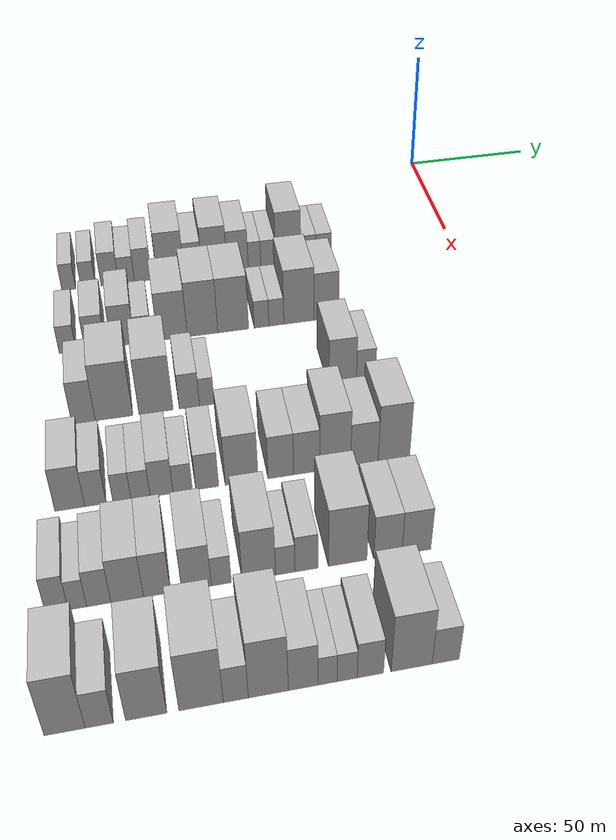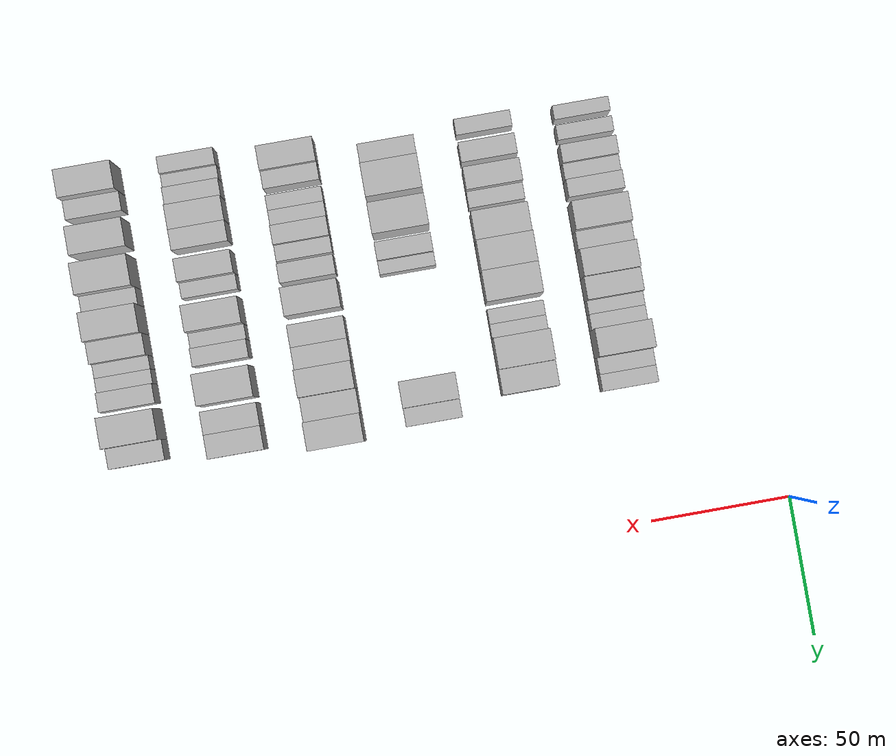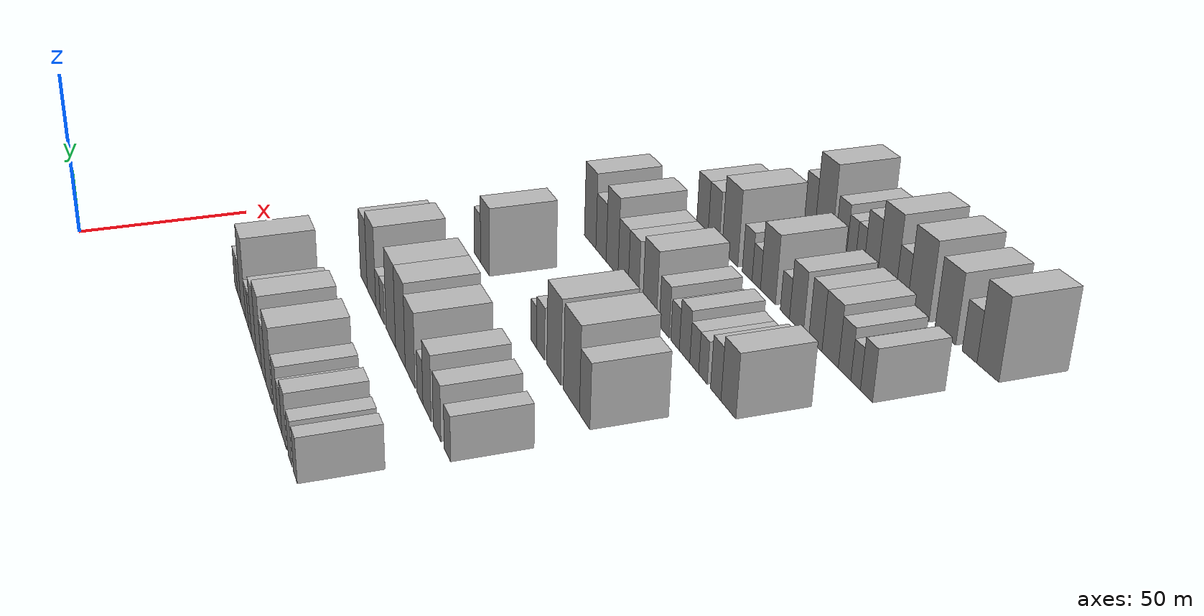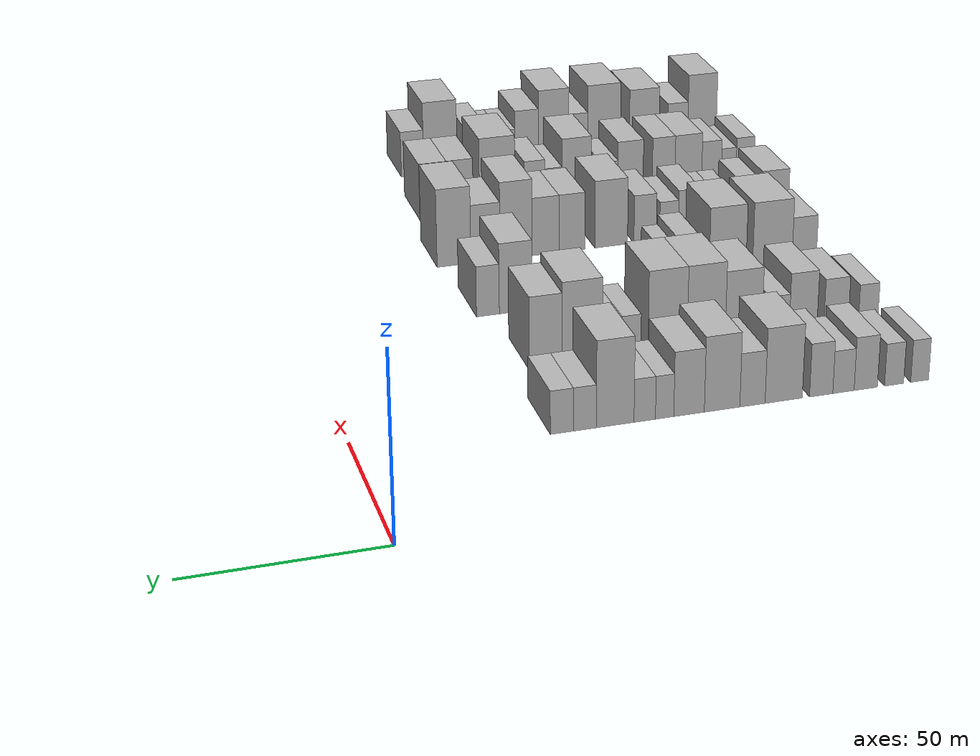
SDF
<sdf version="1.6">
 <world name="default">
  <model name="building_44">
   <static>1</static>
   <pose>50.0000 -148.0670 0 0.000000 0.000000 0.000000</pose>
   <link name="link">
    <pose>0 0 6.00 0 0 0</pose>
    <collision name="collision"><geometry><box><size>20.0000 5.0203 12.0000</size></box></geometry></collision>
    <visual name="visual">
     <cast_shadows>0</cast_shadows>
     <geometry><box><size>20.0000 5.0203 12.0000</size></box></geometry>
     <material>
      <script>
       <uri>model://HANNAS_wall/materials/scripts</uri>
       <uri>model://HANNAS_wall/materials/textures</uri>
       <name>vrc/HANNAS_wall</name>
      </script>
     </material>
    </visual>
   </link>
  </model>
  <model name="building_45">
   <static>1</static>
   <pose>50.0000 -140.8810 0 0.000000 0.000000 0.000000</pose>
   <link name="link">
    <pose>0 0 6.00 0 0 0</pose>
    <collision name="collision"><geometry><box><size>20.0000 5.3517 12.0000</size></box></geometry></collision>
    <visual name="visual">
     <cast_shadows>0</cast_shadows>
     <geometry><box><size>20.0000 5.3517 12.0000</size></box></geometry>
     <material>
      <script>
       <uri>model://HANNAS_wall/materials/scripts</uri>
       <uri>model://HANNAS_wall/materials/textures</uri>
       <name>vrc/HANNAS_wall</name>
      </script>
     </material>
    </visual>
   </link>
  </model>
  <model name="building_46">
   <static>1</static>
   <pose>50.0000 -132.9620 0 0.000000 0.000000 0.000000</pose>
   <link name="link">
    <pose>0 0 7.50 0 0 0</pose>
    <collision name="collision"><geometry><box><size>20.0000 6.4863 15.0000</size></box></geometry></collision>
    <visual name="visual">
     <cast_shadows>0</cast_shadows>
     <geometry><box><size>20.0000 6.4863 15.0000</size></box></geometry>
     <material>
      <script>
       <uri>model://HANNAS_wall/materials/scripts</uri>
       <uri>model://HANNAS_wall/materials/textures</uri>
       <name>vrc/HANNAS_wall</name>
      </script>
     </material>
    </visual>
   </link>
  </model>
  <model name="building_47">
   <static>1</static>
   <pose>50.0000 -126.7714 0 0.000000 0.000000 0.000000</pose>
   <link name="link">
    <pose>0 0 6.00 0 0 0</pose>
    <collision name="collision"><geometry><box><size>20.0000 5.8948 12.0000</size></box></geometry></collision>
    <visual name="visual">
     <cast_shadows>0</cast_shadows>
     <geometry><box><size>20.0000 5.8948 12.0000</size></box></geometry>
     <material>
      <script>
       <uri>model://HANNAS_wall/materials/scripts</uri>
       <uri>model://HANNAS_wall/materials/textures</uri>
       <name>vrc/HANNAS_wall</name>
      </script>
     </material>
    </visual>
   </link>
  </model>
  <model name="building_48">
   <static>1</static>
   <pose>50.0000 -120.6261 0 0.000000 0.000000 0.000000</pose>
   <link name="link">
    <pose>0 0 7.50 0 0 0</pose>
    <collision name="collision"><geometry><box><size>20.0000 6.3958 15.0000</size></box></geometry></collision>
    <visual name="visual">
     <cast_shadows>0</cast_shadows>
     <geometry><box><size>20.0000 6.3958 15.0000</size></box></geometry>
     <material>
      <script>
       <uri>model://HANNAS_wall/materials/scripts</uri>
       <uri>model://HANNAS_wall/materials/textures</uri>
       <name>vrc/HANNAS_wall</name>
      </script>
     </material>
    </visual>
   </link>
  </model>
  <model name="building_49">
   <static>1</static>
   <pose>50.0000 -110.3541 0 0.000000 0.000000 0.000000</pose>
   <link name="link">
    <pose>0 0 10.50 0 0 0</pose>
    <collision name="collision"><geometry><box><size>20.0000 10.1481 21.0000</size></box></geometry></collision>
    <visual name="visual">
     <cast_shadows>0</cast_shadows>
     <geometry><box><size>20.0000 10.1481 21.0000</size></box></geometry>
     <material>
      <script>
       <uri>model://HANNAS_wall/materials/scripts</uri>
       <uri>model://HANNAS_wall/materials/textures</uri>
       <name>vrc/HANNAS_wall</name>
      </script>
     </material>
    </visual>
   </link>
  </model>
  <model name="building_50">
   <static>1</static>
   <pose>50.0000 -101.8672 0 0.000000 0.000000 0.000000</pose>
   <link name="link">
    <pose>0 0 7.50 0 0 0</pose>
    <collision name="collision"><geometry><box><size>20.0000 6.8258 15.0000</size></box></geometry></collision>
    <visual name="visual">
     <cast_shadows>0</cast_shadows>
     <geometry><box><size>20.0000 6.8258 15.0000</size></box></geometry>
     <material>
      <script>
       <uri>model://HANNAS_wall/materials/scripts</uri>
       <uri>model://HANNAS_wall/materials/textures</uri>
       <name>vrc/HANNAS_wall</name>
      </script>
     </material>
    </visual>
   </link>
  </model>
  <model name="building_51">
   <static>1</static>
   <pose>50.0000 -93.6830 0 0.000000 0.000000 0.000000</pose>
   <link name="link">
    <pose>0 0 10.50 0 0 0</pose>
    <collision name="collision"><geometry><box><size>20.0000 9.5425 21.0000</size></box></geometry></collision>
    <visual name="visual">
     <cast_shadows>0</cast_shadows>
     <geometry><box><size>20.0000 9.5425 21.0000</size></box></geometry>
     <material>
      <script>
       <uri>model://HANNAS_wall/materials/scripts</uri>
       <uri>model://HANNAS_wall/materials/textures</uri>
       <name>vrc/HANNAS_wall</name>
      </script>
     </material>
    </visual>
   </link>
  </model>
  <model name="building_52">
   <static>1</static>
   <pose>50.0000 -84.8437 0 0.000000 0.000000 0.000000</pose>
   <link name="link">
    <pose>0 0 9.00 0 0 0</pose>
    <collision name="collision"><geometry><box><size>20.0000 8.1363 18.0000</size></box></geometry></collision>
    <visual name="visual">
     <cast_shadows>0</cast_shadows>
     <geometry><box><size>20.0000 8.1363 18.0000</size></box></geometry>
     <material>
      <script>
       <uri>model://HANNAS_wall/materials/scripts</uri>
       <uri>model://HANNAS_wall/materials/textures</uri>
       <name>vrc/HANNAS_wall</name>
      </script>
     </material>
    </visual>
   </link>
  </model>
  <model name="building_53">
   <static>1</static>
   <pose>50.0000 -78.3528 0 0.000000 0.000000 0.000000</pose>
   <link name="link">
    <pose>0 0 6.00 0 0 0</pose>
    <collision name="collision"><geometry><box><size>20.0000 4.8455 12.0000</size></box></geometry></collision>
    <visual name="visual">
     <cast_shadows>0</cast_shadows>
     <geometry><box><size>20.0000 4.8455 12.0000</size></box></geometry>
     <material>
      <script>
       <uri>model://HANNAS_wall/materials/scripts</uri>
       <uri>model://HANNAS_wall/materials/textures</uri>
       <name>vrc/HANNAS_wall</name>
      </script>
     </material>
    </visual>
   </link>
  </model>
  <model name="building_54">
   <static>1</static>
   <pose>50.0000 -73.1042 0 0.000000 0.000000 0.000000</pose>
   <link name="link">
    <pose>0 0 6.00 0 0 0</pose>
    <collision name="collision"><geometry><box><size>20.0000 5.6515 12.0000</size></box></geometry></collision>
    <visual name="visual">
     <cast_shadows>0</cast_shadows>
     <geometry><box><size>20.0000 5.6515 12.0000</size></box></geometry>
     <material>
      <script>
       <uri>model://HANNAS_wall/materials/scripts</uri>
       <uri>model://HANNAS_wall/materials/textures</uri>
       <name>vrc/HANNAS_wall</name>
      </script>
     </material>
    </visual>
   </link>
  </model>
  <model name="building_55">
   <static>1</static>
   <pose>50.0000 -65.3525 0 0.000000 0.000000 0.000000</pose>
   <link name="link">
    <pose>0 0 12.00 0 0 0</pose>
    <collision name="collision"><geometry><box><size>20.0000 9.8520 24.0000</size></box></geometry></collision>
    <visual name="visual">
     <cast_shadows>0</cast_shadows>
     <geometry><box><size>20.0000 9.8520 24.0000</size></box></geometry>
     <material>
      <script>
       <uri>model://HANNAS_wall/materials/scripts</uri>
       <uri>model://HANNAS_wall/materials/textures</uri>
       <name>vrc/HANNAS_wall</name>
      </script>
     </material>
    </visual>
   </link>
  </model>
  <model name="building_56">
   <static>1</static>
   <pose>50.0000 -57.4614 0 0.000000 0.000000 0.000000</pose>
   <link name="link">
    <pose>0 0 6.00 0 0 0</pose>
    <collision name="collision"><geometry><box><size>20.0000 5.9302 12.0000</size></box></geometry></collision>
    <visual name="visual">
     <cast_shadows>0</cast_shadows>
     <geometry><box><size>20.0000 5.9302 12.0000</size></box></geometry>
     <material>
      <script>
       <uri>model://HANNAS_wall/materials/scripts</uri>
       <uri>model://HANNAS_wall/materials/textures</uri>
       <name>vrc/HANNAS_wall</name>
      </script>
     </material>
    </visual>
   </link>
  </model>
  <model name="building_57">
   <static>1</static>
   <pose>50.0000 -51.5006 0 0.000000 0.000000 0.000000</pose>
   <link name="link">
    <pose>0 0 6.00 0 0 0</pose>
    <collision name="collision"><geometry><box><size>20.0000 5.9915 12.0000</size></box></geometry></collision>
    <visual name="visual">
     <cast_shadows>0</cast_shadows>
     <geometry><box><size>20.0000 5.9915 12.0000</size></box></geometry>
     <material>
      <script>
       <uri>model://HANNAS_wall/materials/scripts</uri>
       <uri>model://HANNAS_wall/materials/textures</uri>
       <name>vrc/HANNAS_wall</name>
      </script>
     </material>
    </visual>
   </link>
  </model>
  <model name="building_178">
   <static>1</static>
   <pose>85.0000 -149.0105 0 0.000000 0.000000 0.000000</pose>
   <link name="link">
    <pose>0 0 6.00 0 0 0</pose>
    <collision name="collision"><geometry><box><size>20.0000 5.7371 12.0000</size></box></geometry></collision>
    <visual name="visual">
     <cast_shadows>0</cast_shadows>
     <geometry><box><size>20.0000 5.7371 12.0000</size></box></geometry>
     <material>
      <script>
       <uri>model://HANNAS_wall/materials/scripts</uri>
       <uri>model://HANNAS_wall/materials/textures</uri>
       <name>vrc/HANNAS_wall</name>
      </script>
     </material>
    </visual>
   </link>
  </model>
  <model name="building_179">
   <static>1</static>
   <pose>85.0000 -139.5717 0 0.000000 0.000000 0.000000</pose>
   <link name="link">
    <pose>0 0 7.50 0 0 0</pose>
    <collision name="collision"><geometry><box><size>20.0000 7.1404 15.0000</size></box></geometry></collision>
    <visual name="visual">
     <cast_shadows>0</cast_shadows>
     <geometry><box><size>20.0000 7.1404 15.0000</size></box></geometry>
     <material>
      <script>
       <uri>model://HANNAS_wall/materials/scripts</uri>
       <uri>model://HANNAS_wall/materials/textures</uri>
       <name>vrc/HANNAS_wall</name>
      </script>
     </material>
    </visual>
   </link>
  </model>
  <model name="building_180">
   <static>1</static>
   <pose>85.0000 -129.9722 0 0.000000 0.000000 0.000000</pose>
   <link name="link">
    <pose>0 0 9.00 0 0 0</pose>
    <collision name="collision"><geometry><box><size>20.0000 8.0587 18.0000</size></box></geometry></collision>
    <visual name="visual">
     <cast_shadows>0</cast_shadows>
     <geometry><box><size>20.0000 8.0587 18.0000</size></box></geometry>
     <material>
      <script>
       <uri>model://HANNAS_wall/materials/scripts</uri>
       <uri>model://HANNAS_wall/materials/textures</uri>
       <name>vrc/HANNAS_wall</name>
      </script>
     </material>
    </visual>
   </link>
  </model>
  <model name="building_181">
   <static>1</static>
   <pose>85.0000 -122.9817 0 0.000000 0.000000 0.000000</pose>
   <link name="link">
    <pose>0 0 6.00 0 0 0</pose>
    <collision name="collision"><geometry><box><size>20.0000 5.9224 12.0000</size></box></geometry></collision>
    <visual name="visual">
     <cast_shadows>0</cast_shadows>
     <geometry><box><size>20.0000 5.9224 12.0000</size></box></geometry>
     <material>
      <script>
       <uri>model://HANNAS_wall/materials/scripts</uri>
       <uri>model://HANNAS_wall/materials/textures</uri>
       <name>vrc/HANNAS_wall</name>
      </script>
     </material>
    </visual>
   </link>
  </model>
  <model name="building_182">
   <static>1</static>
   <pose>85.0000 -112.7972 0 0.000000 0.000000 0.000000</pose>
   <link name="link">
    <pose>0 0 10.50 0 0 0</pose>
    <collision name="collision"><geometry><box><size>20.0000 10.4465 21.0000</size></box></geometry></collision>
    <visual name="visual">
     <cast_shadows>0</cast_shadows>
     <geometry><box><size>20.0000 10.4465 21.0000</size></box></geometry>
     <material>
      <script>
       <uri>model://HANNAS_wall/materials/scripts</uri>
       <uri>model://HANNAS_wall/materials/textures</uri>
       <name>vrc/HANNAS_wall</name>
      </script>
     </material>
    </visual>
   </link>
  </model>
  <model name="building_183">
   <static>1</static>
   <pose>85.0000 -102.1896 0 0.000000 0.000000 0.000000</pose>
   <link name="link">
    <pose>0 0 12.00 0 0 0</pose>
    <collision name="collision"><geometry><box><size>20.0000 10.7687 24.0000</size></box></geometry></collision>
    <visual name="visual">
     <cast_shadows>0</cast_shadows>
     <geometry><box><size>20.0000 10.7687 24.0000</size></box></geometry>
     <material>
      <script>
       <uri>model://HANNAS_wall/materials/scripts</uri>
       <uri>model://HANNAS_wall/materials/textures</uri>
       <name>vrc/HANNAS_wall</name>
      </script>
     </material>
    </visual>
   </link>
  </model>
  <model name="building_184">
   <static>1</static>
   <pose>85.0000 -91.3195 0 0.000000 0.000000 0.000000</pose>
   <link name="link">
    <pose>0 0 12.00 0 0 0</pose>
    <collision name="collision"><geometry><box><size>20.0000 10.9715 24.0000</size></box></geometry></collision>
    <visual name="visual">
     <cast_shadows>0</cast_shadows>
     <geometry><box><size>20.0000 10.9715 24.0000</size></box></geometry>
     <material>
      <script>
       <uri>model://HANNAS_wall/materials/scripts</uri>
       <uri>model://HANNAS_wall/materials/textures</uri>
       <name>vrc/HANNAS_wall</name>
      </script>
     </material>
    </visual>
   </link>
  </model>
  <model name="building_185">
   <static>1</static>
   <pose>85.0000 -81.1855 0 0.000000 0.000000 0.000000</pose>
   <link name="link">
    <pose>0 0 6.00 0 0 0</pose>
    <collision name="collision"><geometry><box><size>20.0000 5.2963 12.0000</size></box></geometry></collision>
    <visual name="visual">
     <cast_shadows>0</cast_shadows>
     <geometry><box><size>20.0000 5.2963 12.0000</size></box></geometry>
     <material>
      <script>
       <uri>model://HANNAS_wall/materials/scripts</uri>
       <uri>model://HANNAS_wall/materials/textures</uri>
       <name>vrc/HANNAS_wall</name>
      </script>
     </material>
    </visual>
   </link>
  </model>
  <model name="building_186">
   <static>1</static>
   <pose>85.0000 -75.8383 0 0.000000 0.000000 0.000000</pose>
   <link name="link">
    <pose>0 0 6.00 0 0 0</pose>
    <collision name="collision"><geometry><box><size>20.0000 5.3981 12.0000</size></box></geometry></collision>
    <visual name="visual">
     <cast_shadows>0</cast_shadows>
     <geometry><box><size>20.0000 5.3981 12.0000</size></box></geometry>
     <material>
      <script>
       <uri>model://HANNAS_wall/materials/scripts</uri>
       <uri>model://HANNAS_wall/materials/textures</uri>
       <name>vrc/HANNAS_wall</name>
      </script>
     </material>
    </visual>
   </link>
  </model>
  <model name="building_187">
   <static>1</static>
   <pose>85.0000 -67.6307 0 0.000000 0.000000 0.000000</pose>
   <link name="link">
    <pose>0 0 12.00 0 0 0</pose>
    <collision name="collision"><geometry><box><size>20.0000 11.0171 24.0000</size></box></geometry></collision>
    <visual name="visual">
     <cast_shadows>0</cast_shadows>
     <geometry><box><size>20.0000 11.0171 24.0000</size></box></geometry>
     <material>
      <script>
       <uri>model://HANNAS_wall/materials/scripts</uri>
       <uri>model://HANNAS_wall/materials/textures</uri>
       <name>vrc/HANNAS_wall</name>
      </script>
     </material>
    </visual>
   </link>
  </model>
  <model name="building_188">
   <static>1</static>
   <pose>85.0000 -57.6493 0 0.000000 0.000000 0.000000</pose>
   <link name="link">
    <pose>0 0 10.50 0 0 0</pose>
    <collision name="collision"><geometry><box><size>20.0000 8.9457 21.0000</size></box></geometry></collision>
    <visual name="visual">
     <cast_shadows>0</cast_shadows>
     <geometry><box><size>20.0000 8.9457 21.0000</size></box></geometry>
     <material>
      <script>
       <uri>model://HANNAS_wall/materials/scripts</uri>
       <uri>model://HANNAS_wall/materials/textures</uri>
       <name>vrc/HANNAS_wall</name>
      </script>
     </material>
    </visual>
   </link>
  </model>
  <model name="building_310">
   <static>1</static>
   <pose>120.0000 -144.5234 0 0.000000 0.000000 0.000000</pose>
   <link name="link">
    <pose>0 0 9.00 0 0 0</pose>
    <collision name="collision"><geometry><box><size>20.0000 7.4501 18.0000</size></box></geometry></collision>
    <visual name="visual">
     <cast_shadows>0</cast_shadows>
     <geometry><box><size>20.0000 7.4501 18.0000</size></box></geometry>
     <material>
      <script>
       <uri>model://HANNAS_wall/materials/scripts</uri>
       <uri>model://HANNAS_wall/materials/textures</uri>
       <name>vrc/HANNAS_wall</name>
      </script>
     </material>
    </visual>
   </link>
  </model>
  <model name="building_311">
   <static>1</static>
   <pose>120.0000 -134.8177 0 0.000000 0.000000 0.000000</pose>
   <link name="link">
    <pose>0 0 12.00 0 0 0</pose>
    <collision name="collision"><geometry><box><size>20.0000 11.9612 24.0000</size></box></geometry></collision>
    <visual name="visual">
     <cast_shadows>0</cast_shadows>
     <geometry><box><size>20.0000 11.9612 24.0000</size></box></geometry>
     <material>
      <script>
       <uri>model://HANNAS_wall/materials/scripts</uri>
       <uri>model://HANNAS_wall/materials/textures</uri>
       <name>vrc/HANNAS_wall</name>
      </script>
     </material>
    </visual>
   </link>
  </model>
  <model name="building_312">
   <static>1</static>
   <pose>120.0000 -121.3184 0 0.000000 0.000000 0.000000</pose>
   <link name="link">
    <pose>0 0 12.00 0 0 0</pose>
    <collision name="collision"><geometry><box><size>20.0000 11.0375 24.0000</size></box></geometry></collision>
    <visual name="visual">
     <cast_shadows>0</cast_shadows>
     <geometry><box><size>20.0000 11.0375 24.0000</size></box></geometry>
     <material>
      <script>
       <uri>model://HANNAS_wall/materials/scripts</uri>
       <uri>model://HANNAS_wall/materials/textures</uri>
       <name>vrc/HANNAS_wall</name>
      </script>
     </material>
    </visual>
   </link>
  </model>
  <model name="building_313">
   <static>1</static>
   <pose>120.0000 -110.4935 0 0.000000 0.000000 0.000000</pose>
   <link name="link">
    <pose>0 0 7.50 0 0 0</pose>
    <collision name="collision"><geometry><box><size>20.0000 6.6123 15.0000</size></box></geometry></collision>
    <visual name="visual">
     <cast_shadows>0</cast_shadows>
     <geometry><box><size>20.0000 6.6123 15.0000</size></box></geometry>
     <material>
      <script>
       <uri>model://HANNAS_wall/materials/scripts</uri>
       <uri>model://HANNAS_wall/materials/textures</uri>
       <name>vrc/HANNAS_wall</name>
      </script>
     </material>
    </visual>
   </link>
  </model>
  <model name="building_314">
   <static>1</static>
   <pose>120.0000 -104.7783 0 0.000000 0.000000 0.000000</pose>
   <link name="link">
    <pose>0 0 6.00 0 0 0</pose>
    <collision name="collision"><geometry><box><size>20.0000 4.8182 12.0000</size></box></geometry></collision>
    <visual name="visual">
     <cast_shadows>0</cast_shadows>
     <geometry><box><size>20.0000 4.8182 12.0000</size></box></geometry>
     <material>
      <script>
       <uri>model://HANNAS_wall/materials/scripts</uri>
       <uri>model://HANNAS_wall/materials/textures</uri>
       <name>vrc/HANNAS_wall</name>
      </script>
     </material>
    </visual>
   </link>
  </model>
  <model name="building_315">
   <static>1</static>
   <pose>120.0000 -59.3512 0 0.000000 0.000000 0.000000</pose>
   <link name="link">
    <pose>0 0 10.50 0 0 0</pose>
    <collision name="collision"><geometry><box><size>20.0000 9.3453 21.0000</size></box></geometry></collision>
    <visual name="visual">
     <cast_shadows>0</cast_shadows>
     <geometry><box><size>20.0000 9.3453 21.0000</size></box></geometry>
     <material>
      <script>
       <uri>model://HANNAS_wall/materials/scripts</uri>
       <uri>model://HANNAS_wall/materials/textures</uri>
       <name>vrc/HANNAS_wall</name>
      </script>
     </material>
    </visual>
   </link>
  </model>
  <model name="building_316">
   <static>1</static>
   <pose>120.0000 -51.4318 0 0.000000 0.000000 0.000000</pose>
   <link name="link">
    <pose>0 0 7.50 0 0 0</pose>
    <collision name="collision"><geometry><box><size>20.0000 6.4934 15.0000</size></box></geometry></collision>
    <visual name="visual">
     <cast_shadows>0</cast_shadows>
     <geometry><box><size>20.0000 6.4934 15.0000</size></box></geometry>
     <material>
      <script>
       <uri>model://HANNAS_wall/materials/scripts</uri>
       <uri>model://HANNAS_wall/materials/textures</uri>
       <name>vrc/HANNAS_wall</name>
      </script>
     </material>
    </visual>
   </link>
  </model>
  <model name="building_432">
   <static>1</static>
   <pose>155.0000 -149.4678 0 0.000000 0.000000 0.000000</pose>
   <link name="link">
    <pose>0 0 9.00 0 0 0</pose>
    <collision name="collision"><geometry><box><size>20.0000 8.6415 18.0000</size></box></geometry></collision>
    <visual name="visual">
     <cast_shadows>0</cast_shadows>
     <geometry><box><size>20.0000 8.6415 18.0000</size></box></geometry>
     <material>
      <script>
       <uri>model://HANNAS_wall/materials/scripts</uri>
       <uri>model://HANNAS_wall/materials/textures</uri>
       <name>vrc/HANNAS_wall</name>
      </script>
     </material>
    </visual>
   </link>
  </model>
  <model name="building_433">
   <static>1</static>
   <pose>155.0000 -142.0054 0 0.000000 0.000000 0.000000</pose>
   <link name="link">
    <pose>0 0 7.50 0 0 0</pose>
    <collision name="collision"><geometry><box><size>20.0000 6.2834 15.0000</size></box></geometry></collision>
    <visual name="visual">
     <cast_shadows>0</cast_shadows>
     <geometry><box><size>20.0000 6.2834 15.0000</size></box></geometry>
     <material>
      <script>
       <uri>model://HANNAS_wall/materials/scripts</uri>
       <uri>model://HANNAS_wall/materials/textures</uri>
       <name>vrc/HANNAS_wall</name>
      </script>
     </material>
    </visual>
   </link>
  </model>
  <model name="building_434">
   <static>1</static>
   <pose>155.0000 -134.2069 0 0.000000 0.000000 0.000000</pose>
   <link name="link">
    <pose>0 0 6.00 0 0 0</pose>
    <collision name="collision"><geometry><box><size>20.0000 5.3136 12.0000</size></box></geometry></collision>
    <visual name="visual">
     <cast_shadows>0</cast_shadows>
     <geometry><box><size>20.0000 5.3136 12.0000</size></box></geometry>
     <material>
      <script>
       <uri>model://HANNAS_wall/materials/scripts</uri>
       <uri>model://HANNAS_wall/materials/textures</uri>
       <name>vrc/HANNAS_wall</name>
      </script>
     </material>
    </visual>
   </link>
  </model>
  <model name="building_435">
   <static>1</static>
   <pose>155.0000 -128.7208 0 0.000000 0.000000 0.000000</pose>
   <link name="link">
    <pose>0 0 6.00 0 0 0</pose>
    <collision name="collision"><geometry><box><size>20.0000 5.6585 12.0000</size></box></geometry></collision>
    <visual name="visual">
     <cast_shadows>0</cast_shadows>
     <geometry><box><size>20.0000 5.6585 12.0000</size></box></geometry>
     <material>
      <script>
       <uri>model://HANNAS_wall/materials/scripts</uri>
       <uri>model://HANNAS_wall/materials/textures</uri>
       <name>vrc/HANNAS_wall</name>
      </script>
     </material>
    </visual>
   </link>
  </model>
  <model name="building_436">
   <static>1</static>
   <pose>155.0000 -122.4604 0 0.000000 0.000000 0.000000</pose>
   <link name="link">
    <pose>0 0 7.50 0 0 0</pose>
    <collision name="collision"><geometry><box><size>20.0000 6.8624 15.0000</size></box></geometry></collision>
    <visual name="visual">
     <cast_shadows>0</cast_shadows>
     <geometry><box><size>20.0000 6.8624 15.0000</size></box></geometry>
     <material>
      <script>
       <uri>model://HANNAS_wall/materials/scripts</uri>
       <uri>model://HANNAS_wall/materials/textures</uri>
       <name>vrc/HANNAS_wall</name>
      </script>
     </material>
    </visual>
   </link>
  </model>
  <model name="building_437">
   <static>1</static>
   <pose>155.0000 -116.1235 0 0.000000 0.000000 0.000000</pose>
   <link name="link">
    <pose>0 0 6.00 0 0 0</pose>
    <collision name="collision"><geometry><box><size>20.0000 5.8115 12.0000</size></box></geometry></collision>
    <visual name="visual">
     <cast_shadows>0</cast_shadows>
     <geometry><box><size>20.0000 5.8115 12.0000</size></box></geometry>
     <material>
      <script>
       <uri>model://HANNAS_wall/materials/scripts</uri>
       <uri>model://HANNAS_wall/materials/textures</uri>
       <name>vrc/HANNAS_wall</name>
      </script>
     </material>
    </visual>
   </link>
  </model>
  <model name="building_438">
   <static>1</static>
   <pose>155.0000 -108.7493 0 0.000000 0.000000 0.000000</pose>
   <link name="link">
    <pose>0 0 7.50 0 0 0</pose>
    <collision name="collision"><geometry><box><size>20.0000 6.9369 15.0000</size></box></geometry></collision>
    <visual name="visual">
     <cast_shadows>0</cast_shadows>
     <geometry><box><size>20.0000 6.9369 15.0000</size></box></geometry>
     <material>
      <script>
       <uri>model://HANNAS_wall/materials/scripts</uri>
       <uri>model://HANNAS_wall/materials/textures</uri>
       <name>vrc/HANNAS_wall</name>
      </script>
     </material>
    </visual>
   </link>
  </model>
  <model name="building_439">
   <static>1</static>
   <pose>155.0000 -98.2603 0 0.000000 0.000000 0.000000</pose>
   <link name="link">
    <pose>0 0 10.50 0 0 0</pose>
    <collision name="collision"><geometry><box><size>20.0000 10.0411 21.0000</size></box></geometry></collision>
    <visual name="visual">
     <cast_shadows>0</cast_shadows>
     <geometry><box><size>20.0000 10.0411 21.0000</size></box></geometry>
     <material>
      <script>
       <uri>model://HANNAS_wall/materials/scripts</uri>
       <uri>model://HANNAS_wall/materials/textures</uri>
       <name>vrc/HANNAS_wall</name>
      </script>
     </material>
    </visual>
   </link>
  </model>
  <model name="building_440">
   <static>1</static>
   <pose>155.0000 -86.2630 0 0.000000 0.000000 0.000000</pose>
   <link name="link">
    <pose>0 0 9.00 0 0 0</pose>
    <collision name="collision"><geometry><box><size>20.0000 7.9534 18.0000</size></box></geometry></collision>
    <visual name="visual">
     <cast_shadows>0</cast_shadows>
     <geometry><box><size>20.0000 7.9534 18.0000</size></box></geometry>
     <material>
      <script>
       <uri>model://HANNAS_wall/materials/scripts</uri>
       <uri>model://HANNAS_wall/materials/textures</uri>
       <name>vrc/HANNAS_wall</name>
      </script>
     </material>
    </visual>
   </link>
  </model>
  <model name="building_441">
   <static>1</static>
   <pose>155.0000 -78.2356 0 0.000000 0.000000 0.000000</pose>
   <link name="link">
    <pose>0 0 9.00 0 0 0</pose>
    <collision name="collision"><geometry><box><size>20.0000 8.1012 18.0000</size></box></geometry></collision>
    <visual name="visual">
     <cast_shadows>0</cast_shadows>
     <geometry><box><size>20.0000 8.1012 18.0000</size></box></geometry>
     <material>
      <script>
       <uri>model://HANNAS_wall/materials/scripts</uri>
       <uri>model://HANNAS_wall/materials/textures</uri>
       <name>vrc/HANNAS_wall</name>
      </script>
     </material>
    </visual>
   </link>
  </model>
  <model name="building_442">
   <static>1</static>
   <pose>155.0000 -69.3473 0 0.000000 0.000000 0.000000</pose>
   <link name="link">
    <pose>0 0 12.00 0 0 0</pose>
    <collision name="collision"><geometry><box><size>20.0000 9.6756 24.0000</size></box></geometry></collision>
    <visual name="visual">
     <cast_shadows>0</cast_shadows>
     <geometry><box><size>20.0000 9.6756 24.0000</size></box></geometry>
     <material>
      <script>
       <uri>model://HANNAS_wall/materials/scripts</uri>
       <uri>model://HANNAS_wall/materials/textures</uri>
       <name>vrc/HANNAS_wall</name>
      </script>
     </material>
    </visual>
   </link>
  </model>
  <model name="building_443">
   <static>1</static>
   <pose>155.0000 -60.1637 0 0.000000 0.000000 0.000000</pose>
   <link name="link">
    <pose>0 0 9.00 0 0 0</pose>
    <collision name="collision"><geometry><box><size>20.0000 8.6916 18.0000</size></box></geometry></collision>
    <visual name="visual">
     <cast_shadows>0</cast_shadows>
     <geometry><box><size>20.0000 8.6916 18.0000</size></box></geometry>
     <material>
      <script>
       <uri>model://HANNAS_wall/materials/scripts</uri>
       <uri>model://HANNAS_wall/materials/textures</uri>
       <name>vrc/HANNAS_wall</name>
      </script>
     </material>
    </visual>
   </link>
  </model>
  <model name="building_444">
   <static>1</static>
   <pose>155.0000 -50.7985 0 0.000000 0.000000 0.000000</pose>
   <link name="link">
    <pose>0 0 12.00 0 0 0</pose>
    <collision name="collision"><geometry><box><size>20.0000 10.0389 24.0000</size></box></geometry></collision>
    <visual name="visual">
     <cast_shadows>0</cast_shadows>
     <geometry><box><size>20.0000 10.0389 24.0000</size></box></geometry>
     <material>
      <script>
       <uri>model://HANNAS_wall/materials/scripts</uri>
       <uri>model://HANNAS_wall/materials/textures</uri>
       <name>vrc/HANNAS_wall</name>
      </script>
     </material>
    </visual>
   </link>
  </model>
  <model name="building_563">
   <static>1</static>
   <pose>190.0000 -153.4759 0 0.000000 0.000000 0.000000</pose>
   <link name="link">
    <pose>0 0 7.50 0 0 0</pose>
    <collision name="collision"><geometry><box><size>20.0000 6.0039 15.0000</size></box></geometry></collision>
    <visual name="visual">
     <cast_shadows>0</cast_shadows>
     <geometry><box><size>20.0000 6.0039 15.0000</size></box></geometry>
     <material>
      <script>
       <uri>model://HANNAS_wall/materials/scripts</uri>
       <uri>model://HANNAS_wall/materials/textures</uri>
       <name>vrc/HANNAS_wall</name>
      </script>
     </material>
    </visual>
   </link>
  </model>
  <model name="building_564">
   <static>1</static>
   <pose>190.0000 -148.0241 0 0.000000 0.000000 0.000000</pose>
   <link name="link">
    <pose>0 0 6.00 0 0 0</pose>
    <collision name="collision"><geometry><box><size>20.0000 4.8997 12.0000</size></box></geometry></collision>
    <visual name="visual">
     <cast_shadows>0</cast_shadows>
     <geometry><box><size>20.0000 4.8997 12.0000</size></box></geometry>
     <material>
      <script>
       <uri>model://HANNAS_wall/materials/scripts</uri>
       <uri>model://HANNAS_wall/materials/textures</uri>
       <name>vrc/HANNAS_wall</name>
      </script>
     </material>
    </visual>
   </link>
  </model>
  <model name="building_565">
   <static>1</static>
   <pose>190.0000 -142.3286 0 0.000000 0.000000 0.000000</pose>
   <link name="link">
    <pose>0 0 7.50 0 0 0</pose>
    <collision name="collision"><geometry><box><size>20.0000 6.4913 15.0000</size></box></geometry></collision>
    <visual name="visual">
     <cast_shadows>0</cast_shadows>
     <geometry><box><size>20.0000 6.4913 15.0000</size></box></geometry>
     <material>
      <script>
       <uri>model://HANNAS_wall/materials/scripts</uri>
       <uri>model://HANNAS_wall/materials/textures</uri>
       <name>vrc/HANNAS_wall</name>
      </script>
     </material>
    </visual>
   </link>
  </model>
  <model name="building_566">
   <static>1</static>
   <pose>190.0000 -134.6798 0 0.000000 0.000000 0.000000</pose>
   <link name="link">
    <pose>0 0 9.00 0 0 0</pose>
    <collision name="collision"><geometry><box><size>20.0000 8.8063 18.0000</size></box></geometry></collision>
    <visual name="visual">
     <cast_shadows>0</cast_shadows>
     <geometry><box><size>20.0000 8.8063 18.0000</size></box></geometry>
     <material>
      <script>
       <uri>model://HANNAS_wall/materials/scripts</uri>
       <uri>model://HANNAS_wall/materials/textures</uri>
       <name>vrc/HANNAS_wall</name>
      </script>
     </material>
    </visual>
   </link>
  </model>
  <model name="building_567">
   <static>1</static>
   <pose>190.0000 -126.5746 0 0.000000 0.000000 0.000000</pose>
   <link name="link">
    <pose>0 0 9.00 0 0 0</pose>
    <collision name="collision"><geometry><box><size>20.0000 7.4042 18.0000</size></box></geometry></collision>
    <visual name="visual">
     <cast_shadows>0</cast_shadows>
     <geometry><box><size>20.0000 7.4042 18.0000</size></box></geometry>
     <material>
      <script>
       <uri>model://HANNAS_wall/materials/scripts</uri>
       <uri>model://HANNAS_wall/materials/textures</uri>
       <name>vrc/HANNAS_wall</name>
      </script>
     </material>
    </visual>
   </link>
  </model>
  <model name="building_568">
   <static>1</static>
   <pose>190.0000 -115.7931 0 0.000000 0.000000 0.000000</pose>
   <link name="link">
    <pose>0 0 9.00 0 0 0</pose>
    <collision name="collision"><geometry><box><size>20.0000 8.1587 18.0000</size></box></geometry></collision>
    <visual name="visual">
     <cast_shadows>0</cast_shadows>
     <geometry><box><size>20.0000 8.1587 18.0000</size></box></geometry>
     <material>
      <script>
       <uri>model://HANNAS_wall/materials/scripts</uri>
       <uri>model://HANNAS_wall/materials/textures</uri>
       <name>vrc/HANNAS_wall</name>
      </script>
     </material>
    </visual>
   </link>
  </model>
  <model name="building_569">
   <static>1</static>
   <pose>190.0000 -108.9395 0 0.000000 0.000000 0.000000</pose>
   <link name="link">
    <pose>0 0 6.00 0 0 0</pose>
    <collision name="collision"><geometry><box><size>20.0000 5.5485 12.0000</size></box></geometry></collision>
    <visual name="visual">
     <cast_shadows>0</cast_shadows>
     <geometry><box><size>20.0000 5.5485 12.0000</size></box></geometry>
     <material>
      <script>
       <uri>model://HANNAS_wall/materials/scripts</uri>
       <uri>model://HANNAS_wall/materials/textures</uri>
       <name>vrc/HANNAS_wall</name>
      </script>
     </material>
    </visual>
   </link>
  </model>
  <model name="building_570">
   <static>1</static>
   <pose>190.0000 -98.4611 0 0.000000 0.000000 0.000000</pose>
   <link name="link">
    <pose>0 0 10.50 0 0 0</pose>
    <collision name="collision"><geometry><box><size>20.0000 9.4082 21.0000</size></box></geometry></collision>
    <visual name="visual">
     <cast_shadows>0</cast_shadows>
     <geometry><box><size>20.0000 9.4082 21.0000</size></box></geometry>
     <material>
      <script>
       <uri>model://HANNAS_wall/materials/scripts</uri>
       <uri>model://HANNAS_wall/materials/textures</uri>
       <name>vrc/HANNAS_wall</name>
      </script>
     </material>
    </visual>
   </link>
  </model>
  <model name="building_571">
   <static>1</static>
   <pose>190.0000 -91.0207 0 0.000000 0.000000 0.000000</pose>
   <link name="link">
    <pose>0 0 6.00 0 0 0</pose>
    <collision name="collision"><geometry><box><size>20.0000 5.4726 12.0000</size></box></geometry></collision>
    <visual name="visual">
     <cast_shadows>0</cast_shadows>
     <geometry><box><size>20.0000 5.4726 12.0000</size></box></geometry>
     <material>
      <script>
       <uri>model://HANNAS_wall/materials/scripts</uri>
       <uri>model://HANNAS_wall/materials/textures</uri>
       <name>vrc/HANNAS_wall</name>
      </script>
     </material>
    </visual>
   </link>
  </model>
  <model name="building_572">
   <static>1</static>
   <pose>190.0000 -85.0434 0 0.000000 0.000000 0.000000</pose>
   <link name="link">
    <pose>0 0 7.50 0 0 0</pose>
    <collision name="collision"><geometry><box><size>20.0000 6.4820 15.0000</size></box></geometry></collision>
    <visual name="visual">
     <cast_shadows>0</cast_shadows>
     <geometry><box><size>20.0000 6.4820 15.0000</size></box></geometry>
     <material>
      <script>
       <uri>model://HANNAS_wall/materials/scripts</uri>
       <uri>model://HANNAS_wall/materials/textures</uri>
       <name>vrc/HANNAS_wall</name>
      </script>
     </material>
    </visual>
   </link>
  </model>
  <model name="building_573">
   <static>1</static>
   <pose>190.0000 -73.2659 0 0.000000 0.000000 0.000000</pose>
   <link name="link">
    <pose>0 0 12.00 0 0 0</pose>
    <collision name="collision"><geometry><box><size>20.0000 11.0730 24.0000</size></box></geometry></collision>
    <visual name="visual">
     <cast_shadows>0</cast_shadows>
     <geometry><box><size>20.0000 11.0730 24.0000</size></box></geometry>
     <material>
      <script>
       <uri>model://HANNAS_wall/materials/scripts</uri>
       <uri>model://HANNAS_wall/materials/textures</uri>
       <name>vrc/HANNAS_wall</name>
      </script>
     </material>
    </visual>
   </link>
  </model>
  <model name="building_574">
   <static>1</static>
   <pose>190.0000 -61.6430 0 0.000000 0.000000 0.000000</pose>
   <link name="link">
    <pose>0 0 9.00 0 0 0</pose>
    <collision name="collision"><geometry><box><size>20.0000 8.1729 18.0000</size></box></geometry></collision>
    <visual name="visual">
     <cast_shadows>0</cast_shadows>
     <geometry><box><size>20.0000 8.1729 18.0000</size></box></geometry>
     <material>
      <script>
       <uri>model://HANNAS_wall/materials/scripts</uri>
       <uri>model://HANNAS_wall/materials/textures</uri>
       <name>vrc/HANNAS_wall</name>
      </script>
     </material>
    </visual>
   </link>
  </model>
  <model name="building_575">
   <static>1</static>
   <pose>190.0000 -53.3110 0 0.000000 0.000000 0.000000</pose>
   <link name="link">
    <pose>0 0 9.00 0 0 0</pose>
    <collision name="collision"><geometry><box><size>20.0000 8.4911 18.0000</size></box></geometry></collision>
    <visual name="visual">
     <cast_shadows>0</cast_shadows>
     <geometry><box><size>20.0000 8.4911 18.0000</size></box></geometry>
     <material>
      <script>
       <uri>model://HANNAS_wall/materials/scripts</uri>
       <uri>model://HANNAS_wall/materials/textures</uri>
       <name>vrc/HANNAS_wall</name>
      </script>
     </material>
    </visual>
   </link>
  </model>
  <model name="building_687">
   <static>1</static>
   <pose>225.0000 -151.9235 0 0.000000 0.000000 0.000000</pose>
   <link name="link">
    <pose>0 0 12.00 0 0 0</pose>
    <collision name="collision"><geometry><box><size>20.0000 9.8597 24.0000</size></box></geometry></collision>
    <visual name="visual">
     <cast_shadows>0</cast_shadows>
     <geometry><box><size>20.0000 9.8597 24.0000</size></box></geometry>
     <material>
      <script>
       <uri>model://HANNAS_wall/materials/scripts</uri>
       <uri>model://HANNAS_wall/materials/textures</uri>
       <name>vrc/HANNAS_wall</name>
      </script>
     </material>
    </visual>
   </link>
  </model>
  <model name="building_688">
   <static>1</static>
   <pose>225.0000 -143.5648 0 0.000000 0.000000 0.000000</pose>
   <link name="link">
    <pose>0 0 7.50 0 0 0</pose>
    <collision name="collision"><geometry><box><size>20.0000 6.8578 15.0000</size></box></geometry></collision>
    <visual name="visual">
     <cast_shadows>0</cast_shadows>
     <geometry><box><size>20.0000 6.8578 15.0000</size></box></geometry>
     <material>
      <script>
       <uri>model://HANNAS_wall/materials/scripts</uri>
       <uri>model://HANNAS_wall/materials/textures</uri>
       <name>vrc/HANNAS_wall</name>
      </script>
     </material>
    </visual>
   </link>
  </model>
  <model name="building_689">
   <static>1</static>
   <pose>225.0000 -132.0705 0 0.000000 0.000000 0.000000</pose>
   <link name="link">
    <pose>0 0 10.50 0 0 0</pose>
    <collision name="collision"><geometry><box><size>20.0000 10.1306 21.0000</size></box></geometry></collision>
    <visual name="visual">
     <cast_shadows>0</cast_shadows>
     <geometry><box><size>20.0000 10.1306 21.0000</size></box></geometry>
     <material>
      <script>
       <uri>model://HANNAS_wall/materials/scripts</uri>
       <uri>model://HANNAS_wall/materials/textures</uri>
       <name>vrc/HANNAS_wall</name>
      </script>
     </material>
    </visual>
   </link>
  </model>
  <model name="building_690">
   <static>1</static>
   <pose>225.0000 -118.4571 0 0.000000 0.000000 0.000000</pose>
   <link name="link">
    <pose>0 0 12.00 0 0 0</pose>
    <collision name="collision"><geometry><box><size>20.0000 11.0963 24.0000</size></box></geometry></collision>
    <visual name="visual">
     <cast_shadows>0</cast_shadows>
     <geometry><box><size>20.0000 11.0963 24.0000</size></box></geometry>
     <material>
      <script>
       <uri>model://HANNAS_wall/materials/scripts</uri>
       <uri>model://HANNAS_wall/materials/textures</uri>
       <name>vrc/HANNAS_wall</name>
      </script>
     </material>
    </visual>
   </link>
  </model>
  <model name="building_691">
   <static>1</static>
   <pose>225.0000 -109.7443 0 0.000000 0.000000 0.000000</pose>
   <link name="link">
    <pose>0 0 7.50 0 0 0</pose>
    <collision name="collision"><geometry><box><size>20.0000 6.3293 15.0000</size></box></geometry></collision>
    <visual name="visual">
     <cast_shadows>0</cast_shadows>
     <geometry><box><size>20.0000 6.3293 15.0000</size></box></geometry>
     <material>
      <script>
       <uri>model://HANNAS_wall/materials/scripts</uri>
       <uri>model://HANNAS_wall/materials/textures</uri>
       <name>vrc/HANNAS_wall</name>
      </script>
     </material>
    </visual>
   </link>
  </model>
  <model name="building_692">
   <static>1</static>
   <pose>225.0000 -101.4926 0 0.000000 0.000000 0.000000</pose>
   <link name="link">
    <pose>0 0 12.00 0 0 0</pose>
    <collision name="collision"><geometry><box><size>20.0000 10.1741 24.0000</size></box></geometry></collision>
    <visual name="visual">
     <cast_shadows>0</cast_shadows>
     <geometry><box><size>20.0000 10.1741 24.0000</size></box></geometry>
     <material>
      <script>
       <uri>model://HANNAS_wall/materials/scripts</uri>
       <uri>model://HANNAS_wall/materials/textures</uri>
       <name>vrc/HANNAS_wall</name>
      </script>
     </material>
    </visual>
   </link>
  </model>
  <model name="building_693">
   <static>1</static>
   <pose>225.0000 -92.5705 0 0.000000 0.000000 0.000000</pose>
   <link name="link">
    <pose>0 0 9.00 0 0 0</pose>
    <collision name="collision"><geometry><box><size>20.0000 7.6703 18.0000</size></box></geometry></collision>
    <visual name="visual">
     <cast_shadows>0</cast_shadows>
     <geometry><box><size>20.0000 7.6703 18.0000</size></box></geometry>
     <material>
      <script>
       <uri>model://HANNAS_wall/materials/scripts</uri>
       <uri>model://HANNAS_wall/materials/textures</uri>
       <name>vrc/HANNAS_wall</name>
      </script>
     </material>
    </visual>
   </link>
  </model>
  <model name="building_694">
   <static>1</static>
   <pose>225.0000 -86.2940 0 0.000000 0.000000 0.000000</pose>
   <link name="link">
    <pose>0 0 6.00 0 0 0</pose>
    <collision name="collision"><geometry><box><size>20.0000 4.8827 12.0000</size></box></geometry></collision>
    <visual name="visual">
     <cast_shadows>0</cast_shadows>
     <geometry><box><size>20.0000 4.8827 12.0000</size></box></geometry>
     <material>
      <script>
       <uri>model://HANNAS_wall/materials/scripts</uri>
       <uri>model://HANNAS_wall/materials/textures</uri>
       <name>vrc/HANNAS_wall</name>
      </script>
     </material>
    </visual>
   </link>
  </model>
  <model name="building_695">
   <static>1</static>
   <pose>225.0000 -81.2321 0 0.000000 0.000000 0.000000</pose>
   <link name="link">
    <pose>0 0 6.00 0 0 0</pose>
    <collision name="collision"><geometry><box><size>20.0000 5.2410 12.0000</size></box></geometry></collision>
    <visual name="visual">
     <cast_shadows>0</cast_shadows>
     <geometry><box><size>20.0000 5.2410 12.0000</size></box></geometry>
     <material>
      <script>
       <uri>model://HANNAS_wall/materials/scripts</uri>
       <uri>model://HANNAS_wall/materials/textures</uri>
       <name>vrc/HANNAS_wall</name>
      </script>
     </material>
    </visual>
   </link>
  </model>
  <model name="building_696">
   <static>1</static>
   <pose>225.0000 -75.1468 0 0.000000 0.000000 0.000000</pose>
   <link name="link">
    <pose>0 0 7.50 0 0 0</pose>
    <collision name="collision"><geometry><box><size>20.0000 6.9296 15.0000</size></box></geometry></collision>
    <visual name="visual">
     <cast_shadows>0</cast_shadows>
     <geometry><box><size>20.0000 6.9296 15.0000</size></box></geometry>
     <material>
      <script>
       <uri>model://HANNAS_wall/materials/scripts</uri>
       <uri>model://HANNAS_wall/materials/textures</uri>
       <name>vrc/HANNAS_wall</name>
      </script>
     </material>
    </visual>
   </link>
  </model>
  <model name="building_697">
   <static>1</static>
   <pose>225.0000 -64.2438 0 0.000000 0.000000 0.000000</pose>
   <link name="link">
    <pose>0 0 12.00 0 0 0</pose>
    <collision name="collision"><geometry><box><size>20.0000 10.8764 24.0000</size></box></geometry></collision>
    <visual name="visual">
     <cast_shadows>0</cast_shadows>
     <geometry><box><size>20.0000 10.8764 24.0000</size></box></geometry>
     <material>
      <script>
       <uri>model://HANNAS_wall/materials/scripts</uri>
       <uri>model://HANNAS_wall/materials/textures</uri>
       <name>vrc/HANNAS_wall</name>
      </script>
     </material>
    </visual>
   </link>
  </model>
  <model name="building_698">
   <static>1</static>
   <pose>225.0000 -55.1684 0 0.000000 0.000000 0.000000</pose>
   <link name="link">
    <pose>0 0 7.50 0 0 0</pose>
    <collision name="collision"><geometry><box><size>20.0000 7.2743 15.0000</size></box></geometry></collision>
    <visual name="visual">
     <cast_shadows>0</cast_shadows>
     <geometry><box><size>20.0000 7.2743 15.0000</size></box></geometry>
     <material>
      <script>
       <uri>model://HANNAS_wall/materials/scripts</uri>
       <uri>model://HANNAS_wall/materials/textures</uri>
       <name>vrc/HANNAS_wall</name>
      </script>
     </material>
    </visual>
   </link>
  </model>
 </world>
</sdf>
